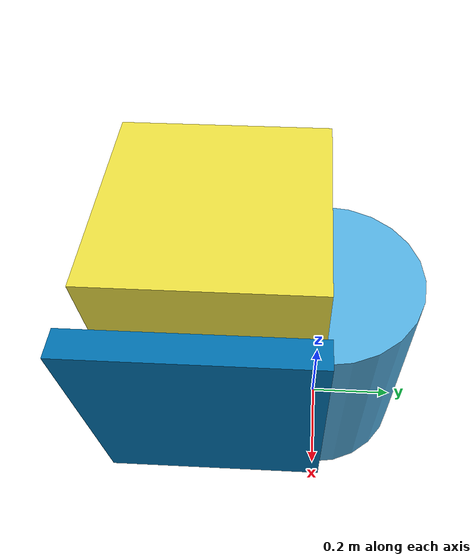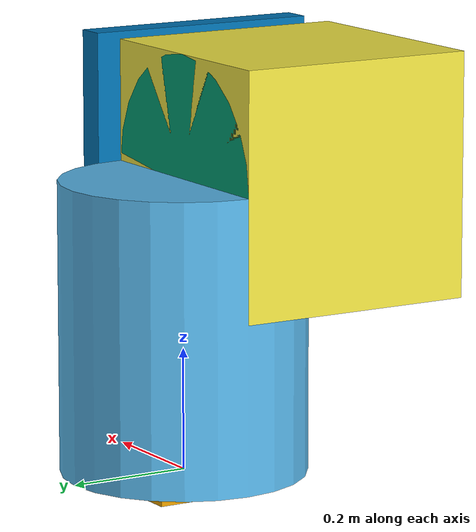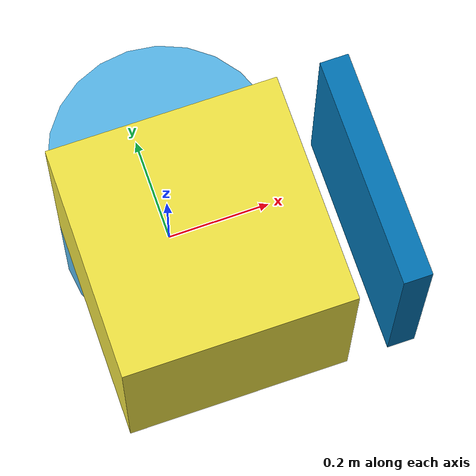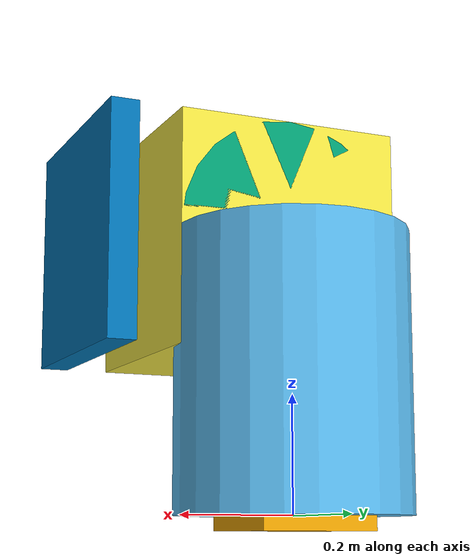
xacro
<?xml version="1.0"?>
<robot name="multipleshapes" xmlns:xacro="http://www.ros.org/wiki/xacro">

  <!-- constants -->
  <xacro:property name="pi" value="3.1415926535897931"/>

  <xacro:property name="d1" value="1.0" />
  <xacro:property name="d2" value="1.0" />
  <xacro:property name="d3" value="0.3" />

  <xacro:property name="link_1_h" value="0.475" />
  <xacro:property name="link_1_w" value="0.2" />
  <xacro:property name="link_2_h" value="0.2" />
  <xacro:property name="link_2_w" value="0.2" />
  <xacro:property name="link_3_s" value="0.4" />

  <xacro:property name="ee_w" value="0.4" />
  <xacro:property name="ee_h" value="0.05" />
  <xacro:property name="ee_limit_lower" value="0.0" />
  <xacro:property name="ee_limit_upper" value="0.5" />

  <!-- Base -->
  <link name="base_link">
    <!-- Optional: give base something visible -->
    <visual>
      <origin xyz="0 0 0" rpy="0 0 0"/>
      <geometry>
        <box size="0.2 0.2 0.05"/>
      </geometry>
    </visual>
    <!-- Optional inertial (helps Gazebo) -->
    <inertial>
      <origin xyz="0 0 0" rpy="0 0 0"/>
      <mass value="1.0"/>
      <inertia ixx="0.01" ixy="0" ixz="0" iyy="0.01" iyz="0" izz="0.01"/>
    </inertial>
  </link>

  <link name="link_1">
    <visual>
      <!-- cylinder is centered; lift it so it sits above joint -->
      <origin xyz="0 0 ${link_1_h/2.0}" rpy="0 0 0"/>
      <geometry>
        <cylinder length="${link_1_h}" radius="${link_1_w}" />
      </geometry>
    </visual>
    <inertial>
      <origin xyz="0 0 ${link_1_h/2.0}" rpy="0 0 0"/>
      <mass value="1.0"/>
      <inertia ixx="0.02" ixy="0" ixz="0" iyy="0.02" iyz="0" izz="0.02"/>
    </inertial>
  </link>

  <joint name="base_to_link_1" type="continuous">
    <parent link="base_link" />
    <child link="link_1" />
    <origin xyz="0 0 0" rpy="0 0 0"/>
    <axis xyz="0 0 1" />
  </joint>

  <link name="link_2">
    <visual>
      <origin xyz="0 0 ${link_2_h/2.0}" rpy="0 0 0"/>
      <geometry>
        <cylinder length="${link_2_h}" radius="${link_2_w}" />
      </geometry>
    </visual>
    <inertial>
      <origin xyz="0 0 ${link_2_h/2.0}" rpy="0 0 0"/>
      <mass value="0.5"/>
      <inertia ixx="0.01" ixy="0" ixz="0" iyy="0.01" iyz="0" izz="0.01"/>
    </inertial>
  </link>

  <joint name="link_1_to_link_2" type="continuous">
    <parent link="link_1" />
    <child link="link_2" />
    <!-- place joint at top of link_1 -->
    <origin xyz="0 0 ${link_1_h}" rpy="${pi/2} 0 0" />
    <axis xyz="0 0 1" />
  </joint>

  <link name="link_3">
    <visual>
      <origin xyz="0 0 0" rpy="0 0 0"/>
      <geometry>
        <box size="${link_3_s} ${link_3_s} ${link_3_s}" />
      </geometry>
    </visual>
    <inertial>
      <origin xyz="0 0 0" rpy="0 0 0"/>
      <mass value="0.5"/>
      <inertia ixx="0.01" ixy="0" ixz="0" iyy="0.01" iyz="0" izz="0.01"/>
    </inertial>
  </link>

  <joint name="link_2_to_link_3" type="fixed">
    <parent link="link_2" />
    <child link="link_3" />
    <!-- place at top of link_2 -->
    <origin xyz="0 0 ${link_2_h}" rpy="${pi/2} 0 ${pi/2}" />
  </joint>

  <link name="end_effector">
    <visual>
      <origin xyz="0 0 0" rpy="0 0 0"/>
      <geometry>
        <box size="${ee_w} ${ee_w} ${ee_h}" />
      </geometry>
    </visual>
    <inertial>
      <origin xyz="0 0 0" rpy="0 0 0"/>
      <mass value="0.2"/>
      <inertia ixx="0.005" ixy="0" ixz="0" iyy="0.005" iyz="0" izz="0.005"/>
    </inertial>
  </link>

  <joint name="link_3_to_end_effector" type="prismatic">
    <parent link="link_3" />
    <child link="end_effector" />
    <origin xyz="0 0 ${d3}" rpy="0 0 0" />
    <axis xyz="0 0 1" />
    <limit lower="${ee_limit_lower}" upper="${ee_limit_upper}" effort="100" velocity="1.0"/>
  </joint>

</robot>
